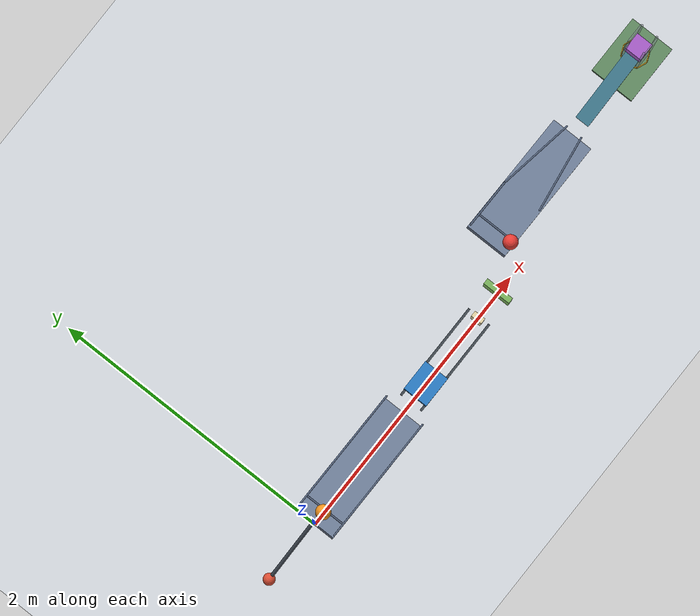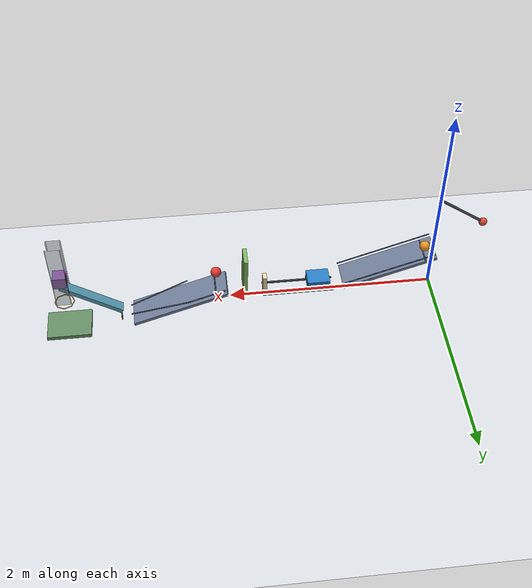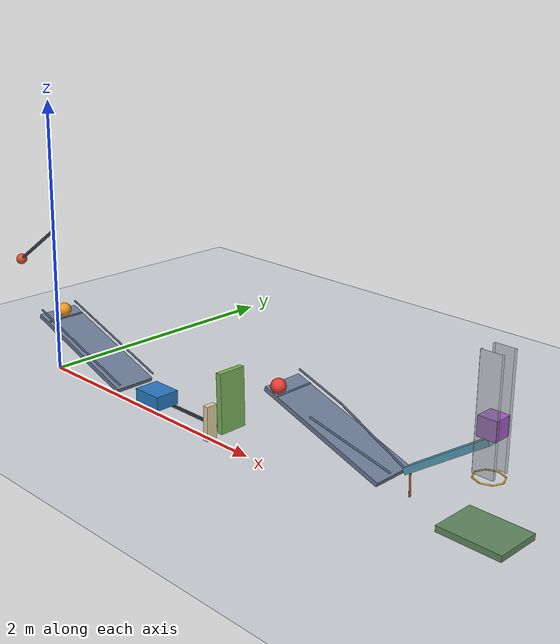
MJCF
<mujoco model="passive_chain_reaction">
  <compiler angle="degree" autolimits="true" inertiafromgeom="true"/>
  <option timestep="0.002" gravity="0 0 -9.81" integrator="implicitfast" solver="Newton" iterations="100" cone="elliptic" impratio="5" o_solref="0.006 0.690107" o_solimp="0.95 0.99 0.001" o_friction="0.68 0.68 0.005 0.0001 0.0001">
    <flag override="enable"/>
  </option>
  <size njmax="2000" nconmax="600"/>
  <visual>
    <headlight ambient="0.35 0.35 0.35" diffuse="0.7 0.7 0.7" specular="0.2 0.2 0.2"/>
    <rgba haze="0.8 0.85 0.9 1"/>
  </visual>

  <!-- All generalized velocities default to zero.
       Contact damping ratio approximates restitution 0.05; MuJoCo does not
       provide an exact, velocity-independent restitution coefficient. -->

  <worldbody>
    <light name="main_light" pos="1.8 -3 5" dir="0 0 -1" directional="true"/>
    <camera name="overview" pos="4.8 -6.5 3.5" xyaxes="0.91 0.41 0 -0.16 0.35 0.923"/>
    <geom name="floor" type="plane" pos="0 0 0" size="7 4 0.1" friction="0.68 0.005 0.0001" condim="6" rgba="0.83 0.85 0.87 1"/>

    <!-- Ramp length and width refer to its upper rolling surface.
         Both low-end surface elevations are exactly 0.15 m. -->
    <body name="ramp1" pos="0.449121323 0 0.304644873" euler="0 19 0">
      <geom name="ramp1_surface" type="box" pos="0 0 -0.015" size="0.475 0.15 0.015" density="0" friction="0.68 0.005 0.0001" rgba="0.42 0.48 0.58 1"/>
      <geom name="ramp1_retaining_lip" type="capsule" fromto="-0.365 -0.14 0.006 -0.365 0.14 0.006" size="0.006" density="0" friction="0.68 0.005 0.0001" rgba="0.32 0.38 0.48 1"/>
      <geom name="ramp1_near_rail" type="capsule" fromto="-0.47 -0.145 0.04 0.475 -0.145 0.04" size="0.006" density="0" friction="0.68 0.005 0.0001" rgba="0.32 0.38 0.48 1"/>
      <geom name="ramp1_far_rail" type="capsule" fromto="-0.47 0.145 0.04 0.475 0.145 0.04" size="0.006" density="0" friction="0.68 0.005 0.0001" rgba="0.32 0.38 0.48 1"/>
    </body>

    <!-- Pendulum length is pivot-to-bob-center.
         Its initial body orientation places it 55 degrees left of vertical. -->
    <body name="pendulum1" pos="0.004616 0 1.067031" euler="0 55 0">
      <joint name="pendulum1_hinge" type="hinge" axis="0 -1 0" range="-5 125" damping="0.04"/>
      <geom name="pendulum1_rod" type="capsule" fromto="0 0 -0.02 0 0 -0.51" size="0.012" mass="0.08" friction="0.68 0.005 0.0001" rgba="0.25 0.28 0.32 1"/>
      <geom name="pendulum1_bob" type="sphere" pos="0 0 -0.55" size="0.04" mass="0.32" friction="0.68 0.005 0.0001" rgba="0.85 0.3 0.2 1"/>
    </body>

    <body name="ball1" pos="0.087532 0 0.482031">
      <freejoint name="ball1_free"/>
      <geom name="ball1_sphere" type="sphere" size="0.05" mass="0.20" friction="0.68 0.005 0.0001" condim="6" rgba="0.95 0.58 0.12 1"/>
    </body>

    <!-- Ramp1 low edge is x=0.898242647.
         Cart1's initial left face is 0.12 m farther along x. -->
    <body name="cart1" pos="1.128242647 0 0.13">
      <joint name="cart1_slide" type="slide" axis="1 0 0" range="0 0.40" damping="0.20" solreflimit="0.006 1" solimplimit="0.95 0.99 0.001"/>
      <geom name="cart1_chassis" type="box" size="0.11 0.09 0.05" mass="0.50" friction="0.68 0.005 0.0001" rgba="0.16 0.48 0.76 1"/>
    </body>

    <body name="cart1_track" pos="1.328242647 0 0.06">
      <geom name="cart1_track_near" type="box" pos="0 -0.08 0" size="0.35 0.008 0.008" density="0" contype="0" conaffinity="0" friction="0.68 0.005 0.0001" rgba="0.24 0.27 0.30 1"/>
      <geom name="cart1_track_far" type="box" pos="0 0.08 0" size="0.35 0.008 0.008" density="0" contype="0" conaffinity="0" friction="0.68 0.005 0.0001" rgba="0.24 0.27 0.30 1"/>
    </body>

    <!-- Domino thickness is along the direction of travel.
         Its left face meets the cart's right face at slide position 0.40 m. -->
    <body name="domino1" pos="1.658242647 0 0.12">
      <freejoint name="domino1_free"/>
      <geom name="domino1_block" type="box" size="0.02 0.04 0.12" mass="0.25" friction="0.68 0.005 0.0001" rgba="0.9 0.83 0.65 1"/>
    </body>

    <!-- A slight backward lean lets the lower hinge stop hold the flap
         until the falling domino pushes it through its unstable balance point.
         The hinge's working stroke is 65 degrees. -->
    <body name="flap1" pos="1.858843 0 0.14" euler="0 -2 0">
      <joint name="flap1_hinge" type="hinge" axis="0 1 0" range="0 65" damping="0.04" solreflimit="0.006 1" solimplimit="0.95 0.99 0.001"/>
      <geom name="flap1_panel" type="box" pos="0 0 0.20" size="0.02 0.10 0.20" mass="0.30" friction="0.68 0.005 0.0001" rgba="0.48 0.70 0.36 1"/>
    </body>

    <!-- Lateral offset lets the flap strike ball2 without subsequently
         intersecting ramp2. Rails funnel ball2 toward the seesaw centerline. -->
    <body name="ramp2" pos="2.499121323 0.253 0.304644873" euler="0 19 0">
      <geom name="ramp2_surface" type="box" pos="0 0 -0.015" size="0.475 0.15 0.015" density="0" friction="0.68 0.005 0.0001" rgba="0.42 0.48 0.58 1"/>
      <geom name="ramp2_retaining_lip" type="capsule" fromto="-0.365 -0.14 0.006 -0.365 0.14 0.006" size="0.006" density="0" friction="0.68 0.005 0.0001" rgba="0.32 0.38 0.48 1"/>
      <geom name="ramp2_far_upper_rail" type="capsule" fromto="-0.47 0.14 0.04 -0.10 0.14 0.04" size="0.006" density="0" friction="0.68 0.005 0.0001" rgba="0.32 0.38 0.48 1"/>
      <geom name="ramp2_far_funnel" type="capsule" fromto="-0.10 0.14 0.04 0.475 0.058 0.04" size="0.006" density="0" friction="0.68 0.005 0.0001" rgba="0.32 0.38 0.48 1"/>
      <geom name="ramp2_near_funnel" type="capsule" fromto="-0.10 -0.14 0.04 0.475 -0.058 0.04" size="0.006" density="0" friction="0.68 0.005 0.0001" rgba="0.32 0.38 0.48 1"/>
    </body>

    <body name="ball2" pos="2.137532 0.13 0.482031">
      <freejoint name="ball2_free"/>
      <geom name="ball2_sphere" type="sphere" size="0.05" mass="0.20" friction="0.68 0.005 0.0001" condim="6" rgba="0.9 0.23 0.20 1"/>
    </body>

    <body name="seesaw1" pos="3.314467061 0.253 0.410" euler="0 -35 0">
      <joint name="seesaw1_hinge" type="hinge" axis="0 -1 0" range="0 40" damping="0.04" stiffness="0.20" springref="916.732472" solreflimit="0.004 1" solimplimit="0.99 0.999 0.0005"/>
      <geom name="seesaw1_beam" type="box" size="0.325 0.05 0.02" mass="0.55" friction="0.68 0.005 0.0001" rgba="0.34 0.62 0.72 1"/>
    </body>

    <!-- Back-leaning catch supports the spring-loaded left endpoint.
         Ball2 tips it forward, allowing gravity and beam load to collapse it. -->
    <body name="seesaw1_catch" pos="3.064994257 0.253 0.05" euler="0 -2 0">
      <joint name="seesaw1_catch_hinge" type="hinge" axis="0 1 0" range="0 100" damping="0.04"/>
      <geom name="seesaw1_catch_arm" type="capsule" fromto="0 0 0.008 0 0 0.151296789" size="0.006" mass="0.035" friction="0.68 0.005 0.0001" rgba="0.65 0.34 0.18 1"/>
    </body>

    <!-- A slotted vertical guide redirects the launch vertically and retains
         block orientation. Its central slot clears the 0.10 m wide beam. -->
    <body name="block1_guide" pos="3.569219947 0.253 0.75">
      <geom name="block1_guide_left_near" type="box" pos="-0.0645 -0.0574 0" size="0.004 0.0066 0.35" density="0" friction="0.68 0.005 0.0001" rgba="0.55 0.58 0.62 0.45"/>
      <geom name="block1_guide_left_far" type="box" pos="-0.0645 0.0574 0" size="0.004 0.0066 0.35" density="0" friction="0.68 0.005 0.0001" rgba="0.55 0.58 0.62 0.45"/>
      <geom name="block1_guide_right_near" type="box" pos="0.0645 -0.0574 0" size="0.004 0.0066 0.35" density="0" friction="0.68 0.005 0.0001" rgba="0.55 0.58 0.62 0.45"/>
      <geom name="block1_guide_right_far" type="box" pos="0.0645 0.0574 0" size="0.004 0.0066 0.35" density="0" friction="0.68 0.005 0.0001" rgba="0.55 0.58 0.62 0.45"/>
      <geom name="block1_guide_near" type="box" pos="0 -0.0645 0" size="0.0645 0.004 0.35" density="0" friction="0.68 0.005 0.0001" rgba="0.55 0.58 0.62 0.45"/>
      <geom name="block1_guide_far" type="box" pos="0 0.0645 0" size="0.0645 0.004 0.35" density="0" friction="0.68 0.005 0.0001" rgba="0.55 0.58 0.62 0.45"/>
    </body>

    <body name="block1" pos="3.569219947 0.253 0.672795383">
      <freejoint name="block1_free"/>
      <geom name="block1_cube" type="box" size="0.06 0.06 0.06" mass="0.35" friction="0.68 0.005 0.0001" rgba="0.65 0.36 0.78 1"/>
    </body>

    <body name="ring1" pos="3.569219947 0.253 0.372795383">
      <geom name="ring1_segment_1" type="capsule" fromto="0.090920941 0 0 0.064290817 0.064290817 0" size="0.004" density="0" friction="0.68 0.005 0.0001" rgba="0.95 0.72 0.16 1"/>
      <geom name="ring1_segment_2" type="capsule" fromto="0.064290817 0.064290817 0 0 0.090920941 0" size="0.004" density="0" friction="0.68 0.005 0.0001" rgba="0.95 0.72 0.16 1"/>
      <geom name="ring1_segment_3" type="capsule" fromto="0 0.090920941 0 -0.064290817 0.064290817 0" size="0.004" density="0" friction="0.68 0.005 0.0001" rgba="0.95 0.72 0.16 1"/>
      <geom name="ring1_segment_4" type="capsule" fromto="-0.064290817 0.064290817 0 -0.090920941 0 0" size="0.004" density="0" friction="0.68 0.005 0.0001" rgba="0.95 0.72 0.16 1"/>
      <geom name="ring1_segment_5" type="capsule" fromto="-0.090920941 0 0 -0.064290817 -0.064290817 0" size="0.004" density="0" friction="0.68 0.005 0.0001" rgba="0.95 0.72 0.16 1"/>
      <geom name="ring1_segment_6" type="capsule" fromto="-0.064290817 -0.064290817 0 0 -0.090920941 0" size="0.004" density="0" friction="0.68 0.005 0.0001" rgba="0.95 0.72 0.16 1"/>
      <geom name="ring1_segment_7" type="capsule" fromto="0 -0.090920941 0 0.064290817 -0.064290817 0" size="0.004" density="0" friction="0.68 0.005 0.0001" rgba="0.95 0.72 0.16 1"/>
      <geom name="ring1_segment_8" type="capsule" fromto="0.064290817 -0.064290817 0 0.090920941 0 0" size="0.004" density="0" friction="0.68 0.005 0.0001" rgba="0.95 0.72 0.16 1"/>
    </body>

    <!-- Horizontal hinged door, gravity-held against its closed stop.
         At contact, the upright cube center is 0.25 m below ring1's center. -->
    <body name="door1" pos="3.359219947 0.253 0.042795383">
      <joint name="door1_hinge" type="hinge" axis="0 1 0" range="-75 0" damping="0.04" solreflimit="0.006 1" solimplimit="0.95 0.99 0.001"/>
      <geom name="door1_panel" type="box" pos="0.21 0 0" size="0.21 0.16 0.02" mass="0.45" friction="0.68 0.005 0.0001" rgba="0.38 0.54 0.38 1"/>
    </body>
  </worldbody>

  <keyframe>
    <key name="start"/>
  </keyframe>
</mujoco>
